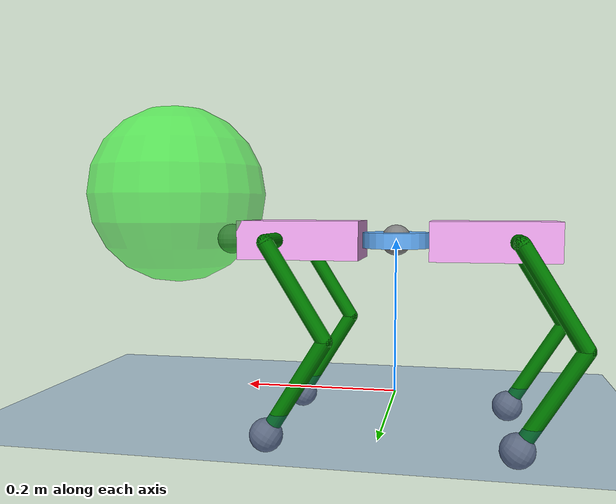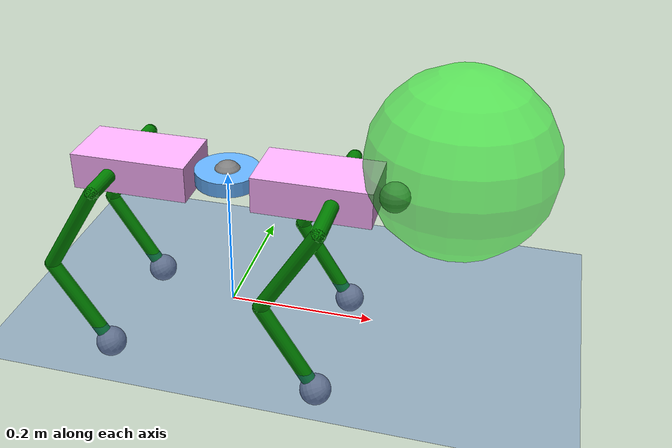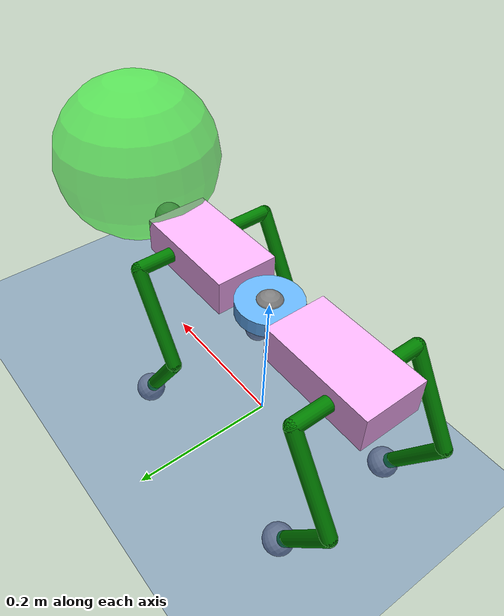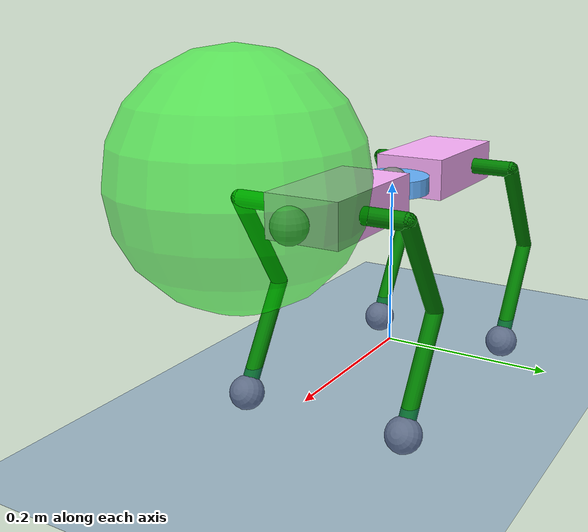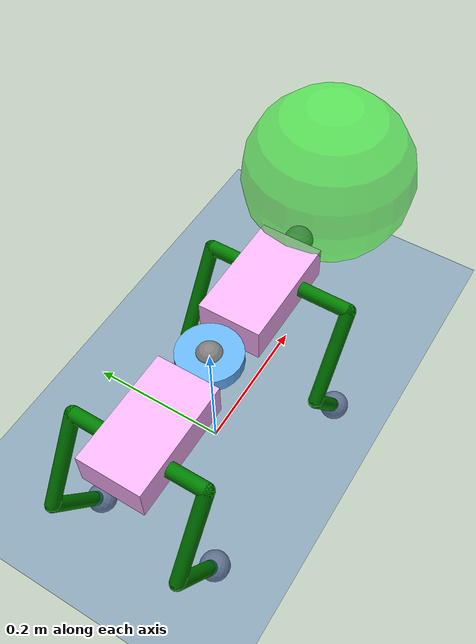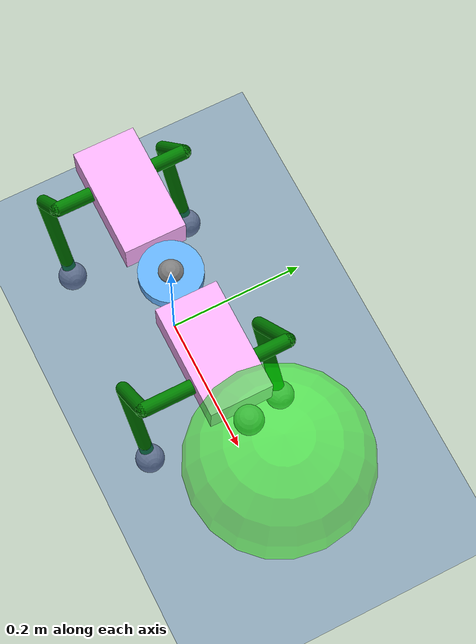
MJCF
<mujoco>
    <include file="../common.xml"/>

    <size memory="1M" />

    <custom>
        <text name="task_transition" data="Quadruped|Walk" />
        <numeric name="agent_planner" data="2" />
        <numeric name="agent_horizon" data="0.35" />
        <numeric name="agent_timestep" data="0.01" />
        <numeric name="sampling_spline_points" data="3" />
        <numeric name="sampling_trajectories" data="60"/>
        <numeric name="sampling_exploration" data="0.04" />
        <numeric name="gradient_spline_points" data="5" />

        <numeric name="residual_select_Gait" data="0"/>
        <text name="residual_list_Gait" data="Stand|Walk|Trot|Canter|Gallop"/>
        <numeric name="residual_select_Gait switch" data="1"/>
        <text name="residual_list_Gait switch" data="Manual|Automatic"/>
        <numeric name="residual_Cadence" data="2 0 4" />
        <numeric name="residual_Amplitude" data=".06 0 0.2" />
        <numeric name="residual_Duty ratio" data="0 0 1"/>
        <numeric name="residual_Walk speed" data="0 0 2"/>
        <numeric name="residual_Walk turn" data="0 -2 2"/>
        <numeric name="residual_Heading" data="0 -3.14 3.14" />
        <numeric name="residual_select_Posture" data="1"/>
        <text name="residual_list_Posture" data="Low|Normal|High"/>
        <numeric name="residual_Spinal angle" data="0 -1.39 1.39" />
        <numeric name="residual_Chest height" data="0.2 0.15 0.25" />

    </custom>

    <visual>
        <headlight diffuse="0.6 0.6 0.6"  ambient="0.3 0.3 0.3" specular="0 0 0"/>
        <global azimuth="-90"/>
    </visual>

    <statistic extent="1" center="0 0 .3"/>

    <worldbody>
        <light pos="0 0 1.5" dir="0 0 -1" diffuse="0.5 0.5 0.5" specular="0.3 0.3 0.3"
        directional="true" castshadow="false"/>

        <geom name="floor" size="0 0 0.1" pos="0 0 -0.01" type="plane" material="blue_grid"/>

        <body name="goal" mocap="true" pos=".3 0 0.26">
            <geom size="0.12" contype="0" conaffinity="0" rgba="0 1 0 .5" group="2"/>
        </body>

    </worldbody>

    <include file="robot_spine.xml"/>

    <actuator>
        <motor name="Frontlimb-Z" joint="frontlimb-z-hinge" gear="1" ctrllimited="true" ctrlrange="-20 20"/>
        <motor name="Frontlimb-Y" joint="frontlimb-y-hinge" gear="1" ctrllimited="true" ctrlrange="-20 20"/>
        <motor name="Hindlimb-Y" joint="hindlimb-y-hinge" gear="1" ctrllimited="true" ctrlrange="-20 20"/>

        <motor name="FL_Abduction" joint="AbductionMotor_FL" gear="1" ctrllimited="true" ctrlrange="-20 20"/>
        <motor name="FL_Up" joint="HipMotor_FL" gear="1" ctrllimited="true" ctrlrange="-20 20"/>
        <motor name="FL_Down" joint="KneeMotor_FL" gear="1" ctrllimited="true" ctrlrange="-20 20"/>

        <motor name="FR_Abduction" joint="AbductionMotor_FR" gear="1" ctrllimited="true" ctrlrange="-20 20"/>
        <motor name="FR_Up" joint="HipMotor_FR" gear="1" ctrllimited="true" ctrlrange="-20 20"/>
        <motor name="FR_Down" joint="KneeMotor_FR" gear="1" ctrllimited="true" ctrlrange="-20 20"/>

        <motor name="RL_Abduction" joint="AbductionMotor_RL" gear="1" ctrllimited="true" ctrlrange="-20 20"/>
        <motor name="RL_Up" joint="HipMotor_RL" gear="1" ctrllimited="true" ctrlrange="-20 20"/>
        <motor name="RL_Down" joint="KneeMotor_RL" gear="1" ctrllimited="true" ctrlrange="-20 20"/>

        <motor name="RR_Abduction" joint="AbductionMotor_RR" gear="1" ctrllimited="true" ctrlrange="-20 20"/>
        <motor name="RR_Up" joint="HipMotor_RR" gear="1" ctrllimited="true" ctrlrange="-20 20"/>
        <motor name="RR_Down" joint="KneeMotor_RR" gear="1" ctrllimited="true" ctrlrange="-20 20"/>
    </actuator>

    <sensor>
        <user name="Upright" dim="3" user="6 1 0 3 0.05" />
        <user name="Height" dim="1" user="6 1 0 3 0.04" />
        <user name="Position" dim="3" user="2 0.2 0 0.5 0.1" />
        <user name="Gait" dim="4" user="6 2 0 10 0.03" />
        <user name="Balance" dim="2" user="2 0.2 0 0.3 0.1" />
        <user name="Effort" dim="15" user="0 0.03 0.0 0.1" />
        <user name="Posture" dim="15" user="0 0.2 0.0 1" />
        <user name="Orientation" dim="2" user="0 0 0 .03" />
        <user name="Angmom" dim="3" user="0 0 0 .03" />

        <framepos name="trace0" objtype="site" objname="head" />
        <subtreecom name="torso_subtreecom" body="main_body" />
        <subtreelinvel name="torso_subtreelinvel" body="main_body"/>
        <subtreeangmom name="torso_angmom" body="main_body"/>
    </sensor>

    <keyframe>

        <!-- frontlimb spine joints -->
        <!-- front left leg joints -->
        <!-- front right leg joints -->

        <!-- frontlimb spine joint -->
        <!-- hind left leg joints -->
        <!-- hind right leg joints -->

        <key name="low"
            qpos="
            0 0 0.2
            1 0 0 0

            0 -0.42
            0 0.45 0
            0 0.45 0

            0.42
            0 -0.45 0
            0 -0.45 0"/>

        <key name="home"
            qpos="
            0 0 0.2
            1 0 0 0

            0 0
            0 0 0
            0 0 0

            0
            0 0 0
            0 0 0"/>

        <key name="high"
            qpos="
            0 0 0.2
            1 0 0 0

            0 0.42
            0 0 0
            0 0 0

            -0.42
            0 0.7 0
            0 0.7 0"/>

      </keyframe>

</mujoco>

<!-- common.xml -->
<mujoco>

    <visual>
        <headlight ambient=".4 .4 .4" diffuse=".8 .8 .8" specular="0.1 0.1 0.1"/>
        <map znear=".01"/>
        <quality shadowsize="2048"/>
        <global elevation="-15"/>
    </visual>

    <asset>
        <texture name="blue_grid" type="2d" builtin="checker" rgb1=".02 .14 .44" rgb2=".27 .55 1" width="300" height="300" mark="edge" markrgb="1 1 1"/>
        <material name="blue_grid" texture="blue_grid" texrepeat="1 1" texuniform="true" reflectance=".2"/>

        <texture name="grey_grid" type="2d" builtin="checker" rgb1=".26 .26 .26" rgb2=".6 .6 .6" width="300" height="300" mark="edge" markrgb="1 1 1"/>
        <material name="grey_grid" texture="grey_grid" texrepeat="1 1" texuniform="true" reflectance=".2"/>
        <texture name="skybox" type="skybox" builtin="gradient" rgb1=".66 .79 1" rgb2=".9 .91 .93" width="800" height="800"/>

        <material name="self" rgba=".7 .5 .3 1"/>
        <material name="self_default" rgba=".7 .5 .3 1"/>
        <material name="self_highlight" rgba="0 .5 .3 1"/>
        <material name="effector" rgba=".7 .4 .2 1"/>
        <material name="effector_default" rgba=".7 .4 .2 1"/>
        <material name="effector_highlight" rgba="0 .5 .3 1"/>
        <material name="decoration" rgba=".2 .6 .3 1"/>
        <material name="eye" rgba="0 .2 1 1"/>
        <material name="target" rgba=".6 .3 .3 1"/>
        <material name="target_default" rgba=".6 .3 .3 1"/>
        <material name="target_highlight" rgba=".6 .3 .3 .4"/>
        <material name="site" rgba=".5 .5 .5 .3"/>
    </asset>

    <size memory="1M"/>

    <statistic extent="0.4" center="0.3 0.1 0"/>

    <visual>
        <quality shadowsize="8192"/>
        <global azimuth="180" elevation="-30"/>
    </visual>

    <default>
        <geom friction="1.0"/>
    </default>

    <compiler angle="radian" autolimits="true"/>

    <asset>
        <mesh name="apple" file="../../shared_assets/apple/apple.obj" />
        <mesh name="apple_contact0" file="../../shared_assets/apple/contact0.stl"  />
        <mesh name="apple_contact1" file="../../shared_assets/apple/contact1.stl"  />

        <mesh name="doorknob" file="../../shared_assets/doorknob/doorknob.obj" />

        <mesh name="flashlight" file="../../shared_assets/flashlight/flashlight.obj" />
        <mesh name="flashlight_contact0" file="../../shared_assets/flashlight/contact0.stl"  />
        <mesh name="flashlight_contact1" file="../../shared_assets/flashlight/contact1.stl"  />

        <mesh name="hammer" file="../../shared_assets/hammer/hammer.obj" />
        <mesh name="hammer_contact0" file="../../shared_assets/hammer/contact0.stl"  />
        <mesh name="hammer_contact1" file="../../shared_assets/hammer/contact1.stl"  />

        <mesh name="phone" file="../../shared_assets/phone/phone.obj" />
        <mesh name="phone_contact0" file="../../shared_assets/phone/contact0.stl"  />
        <mesh name="phone_contact1" file="../../shared_assets/phone/contact1.stl"  />
        <mesh name="phone_contact2" file="../../shared_assets/phone/contact2.stl"  />

        <mesh name="stapler" file="../../shared_assets/stapler/stapler.obj" />
        <mesh name="stapler_contact0" file="../../shared_assets/stapler/contact0.stl"  />
        <mesh name="stapler_contact1" file="../../shared_assets/stapler/contact1.stl"  />
        <mesh name="stapler_contact2" file="../../shared_assets/stapler/contact2.stl"  />
        <mesh name="stapler_contact3" file="../../shared_assets/stapler/contact3.stl"  />
        <mesh name="stapler_contact4" file="../../shared_assets/stapler/contact4.stl"  />

        <mesh name="waterbottle" file="../../shared_assets/waterbottle/waterbottle.obj" />
        <mesh name="waterbottle_contact0" file="../../shared_assets/waterbottle/contact0.stl"  />
        <mesh name="waterbottle_contact1" file="../../shared_assets/waterbottle/contact1.stl"  />
    </asset>

</mujoco>

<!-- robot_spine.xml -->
<mujoco>

    <default>

        <default class="motor">

            <default class="limb-z-motor">
                <joint limited="true" range="-60 60" type="hinge"
                    pos="-0.12325 0 0" stiffness="0" damping="0.1" armature="0.0065"
                    group="1" />
            </default>

            <default class="limb-y-motor">
                <joint limited="true" range="-24 24" type="hinge"
                    pos="-0.12325 0 0" axis="0 1 0" stiffness="0" damping="0.1" armature="0.0065"
                    group="1" />
            </default>

            <default class="abduction_motor">
                <joint limited="true" range="-20 30" type="hinge"
                    pos="0 0 0" axis="1 0 0" stiffness="0" damping="0.1" armature="0.0065"
                    group="1" />
            </default>

            <default class="hip_motor">
                <joint limited="true" range="-40 40" type="hinge"
                    pos="0 0 0" axis="0 1 0" stiffness="0" damping="0.1" armature="0.0065"
                    group="1" />
            </default>

            <default class="knee_motor">
                <joint limited="true" range="-30 30" type="hinge"
                    pos="0 0 0" axis="0 1 0" stiffness="0" damping="0.1" armature="0.0065"
                    group="1" />
            </default>

            <default class="AbductionGeom">
                <geom type="capsule" mass="0.055" size="0.01" rgba="0.0 0.5 0.0 1"
                    group="1"/>
            </default>

            <default class="UpLeg">
                <geom type="capsule" mass="0.055" size="0.01" fromto="0 0 0 -0.14 0 0" rgba="0.0 0.5 0.0 1"
                    group="1" />
            </default>

            <default class="DownLeg">
                <geom type="capsule" mass="0.055" size="0.01" fromto="0 0 0 0.14 0 0" rgba="0.0 0.5 0.0 1"
                    group="1" />
            </default>

            <default class="Foot">
                <geom type="sphere" mass="0" size="0.02" rgba="1.0 1.0 0.1 1" friction="2 0.02 0.01"
                    group="1"/>
            </default>

        </default>

    </default>

    <worldbody>
        <body name="main_body" pos="0 0 0.2" euler="0 0 0" >
            <joint name="rail" type="free"/>

            <geom name="chest" group="1" mass="0.1" type="cylinder" size="0.044 0.01" rgba="0.4 0.7 1.0 1"/>

            <site name="imu" size="0.02" pos="0 0 0"/>

            <body name="frontlimb" pos="0.12325 0 0">
                <joint name="frontlimb-z-hinge" class="limb-z-motor" />
                <joint name="frontlimb-y-hinge" class="limb-y-motor" pos="-0.12325 0 0"/>

                <geom name="frontlimb_geom" group="1" mass="2.75" type="box" size="0.07925 0.044 0.025" rgba="1 0.7 1.0 1"/>

                <site name="head" pos="0.09925 0 0" size="0.02"/>

                <body name="FL" pos="0.02725 0.044 0">

                    <body name="LegFrame_FL">
                        <joint name="AbductionMotor_FL" class="abduction_motor"/>
                        <geom name="Abduction_FL" class="AbductionGeom" fromto="0 0 0 0 0.05 0"/>

                        <body name="UpLegFrame_FL" pos="0 0.05 0" euler="0 -45 0">
                            <joint name="HipMotor_FL" class="hip_motor" />
                            <geom name="UpLeg_FL" class="UpLeg"/>

                            <body name="DownLegFrame_FL" pos="-0.14 0 0" euler="0 90 0">
                                <joint name="KneeMotor_FL" class="knee_motor" />
                                <geom name="DownLeg_FL" class="DownLeg"/>

                                <body name="FootFrame_FL" pos="0.14 0 0">
                                    <geom name="Foot_FL" class="Foot"/>
                                    <site name="Foot_FL_contact" size="0.021"/>
                                </body>
                            </body>
                        </body>
                    </body>
                </body>

                <body name="FR" pos="0.02725 -0.044 0">
                    <body name="LegFrame_FR">
                        <joint name="AbductionMotor_FR" class="abduction_motor"/>
                        <geom name="Abduction_FR" class="AbductionGeom" fromto="0 0 0 0 -0.07 0"/>

                        <body name="UpLegFrame_FR" pos="0 -0.07 0" euler="0 -45 0">
                            <joint name="HipMotor_FR" class="hip_motor" />
                            <geom name="UpLeg_FR" class="UpLeg"/>

                            <body name="DownLegFrame_FR" pos="-0.14 0 0" euler="0 90 0">
                                <joint name="KneeMotor_FR" class="knee_motor"/>
                                <geom name="DownLeg_FR" class="DownLeg"/>

                                <body name="FootFrame_FR" pos="0.14 0 0">
                                    <geom name="Foot_FR" class="Foot"/>
                                    <site name="Foot_FR_contact" size="0.021"/>
                                </body>
                            </body>
                        </body>
                    </body>
                </body>

            </body>

            <body name="hindlimb" pos="-0.12325 0 0">
                <joint name="hindlimb-y-hinge" class="limb-y-motor" pos="0.12325 0 0"/>

                <geom name="hindlimb_geom" group="1" mass="2.75" type="box" size="0.07925 0.044 0.025" rgba="1 0.7 1.0 1"/>

                <body name="RL" pos="-0.02725 0.044 0">
                    <body name="LegFrame_RL">
                        <joint name="AbductionMotor_RL" class="abduction_motor"/>
                        <geom name="Abduction_RL" class="AbductionGeom" fromto="0 0 0 0 0.05 0"/>

                        <body name="UpLegFrame_RL" pos="0 0.05 0" euler="0 -45 0">
                            <joint name="HipMotor_RL" class="hip_motor" />
                            <geom name="UpLeg_RL" class="UpLeg"/>

                            <body name="DownLegFrame_RL" pos="-0.14 0 0" euler="0 90 0">
                                <joint name="KneeMotor_RL" class="knee_motor" />
                                <geom name="DownLeg_RL" class="DownLeg"/>

                                <body name="FootFrame_RL" pos="0.14 0 0">
                                    <geom name="Foot_RL" class="Foot"/>
                                    <site name="Foot_RL_contact" size="0.021"/>
                                </body>
                            </body>
                        </body>
                    </body>

                </body>

                <body name="RR" pos="-0.02725 -0.044 0">
                    <body name="LegFrame_RR">
                        <joint name="AbductionMotor_RR" class="abduction_motor"/>
                        <geom name="Abduction_RR" class="AbductionGeom" fromto="0 0 0 0 -0.05 0"/>

                        <body name="UpLegFrame_RR" pos="0 -0.05 0" euler="0 -45 0">
                            <joint name="HipMotor_RR" class="hip_motor" />
                            <geom name="UpLeg_RR" class="UpLeg"/>

                            <body name="DownLegFrame_RR" pos="-0.14 0 0" euler="0 90 0">
                                <joint name="KneeMotor_RR" class="knee_motor" />
                                <geom name="DownLeg_RR" class="DownLeg"/>

                                <body name="FootFrame_RR" pos="0.14 0 0">
                                    <geom name="Foot_RR" class="Foot"/>
                                    <site name="Foot_RR_contact" size="0.021"/>
                                </body>
                            </body>
                        </body>
                    </body>
                </body>

            </body>

        </body>

    </worldbody>

</mujoco>
